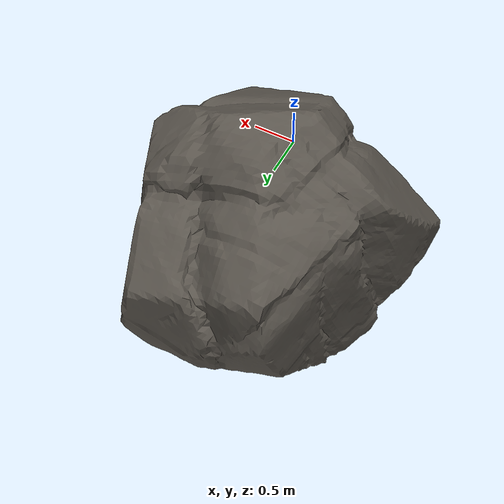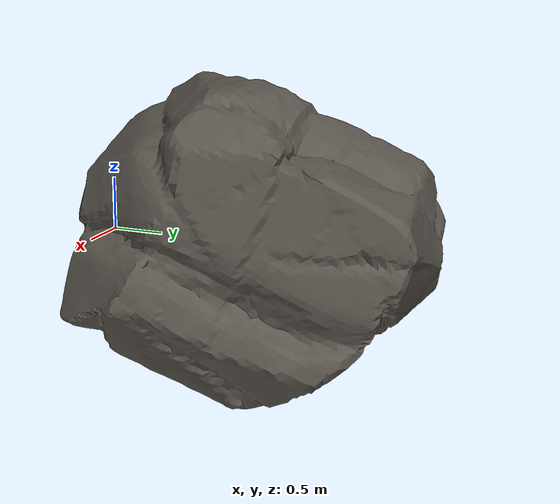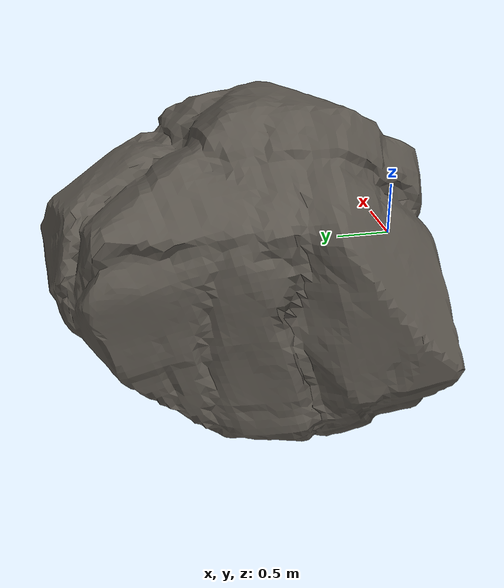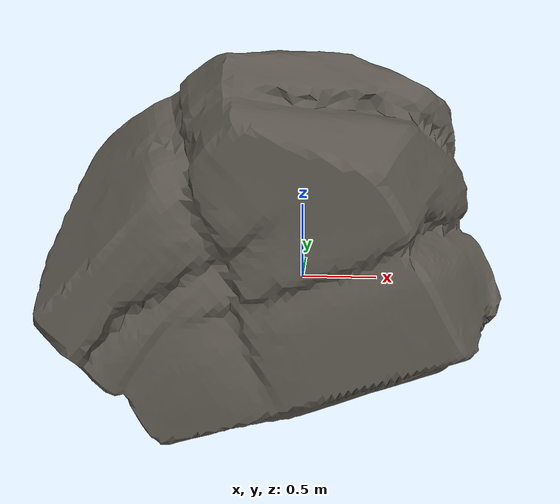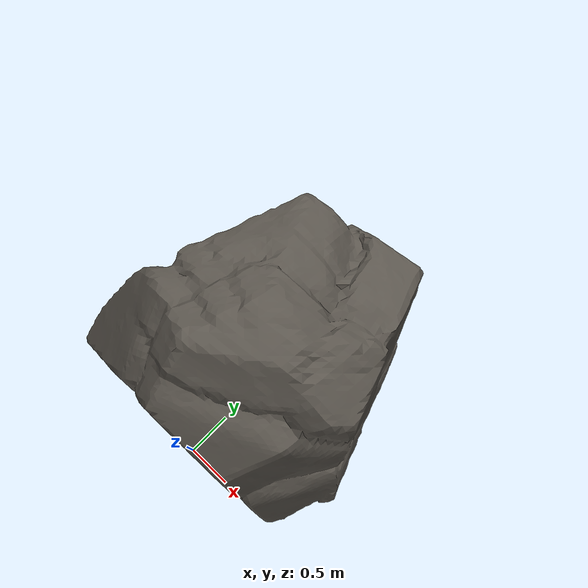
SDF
<?xml version="1.0"?>
<sdf version="1.7">
  <model name="boulder">

    <static>true</static>

    <link name="boulder_link">

      <visual name="boulder_visual">
        <geometry>
          <mesh>
            <uri>model://terrain_world/meshes/boulder.obj</uri>
            <scale>3 3 3</scale>
          </mesh>
        </geometry>

        <material>
          <ambient>0.3 0.3 0.3 1</ambient>
          <diffuse>0.35 0.33 0.30 1</diffuse>
          <specular>0.05 0.05 0.05 1</specular>
        </material>
        <cast_shadows>true</cast_shadows>
      </visual>

      <collision name="boulder_collision">
        <geometry>
          <mesh>
            <uri>model://terrain_world/meshes/boulder.obj</uri>
            <scale>3 3 3</scale>
          </mesh>
        </geometry>
      </collision>

    </link>
  </model>
</sdf>
